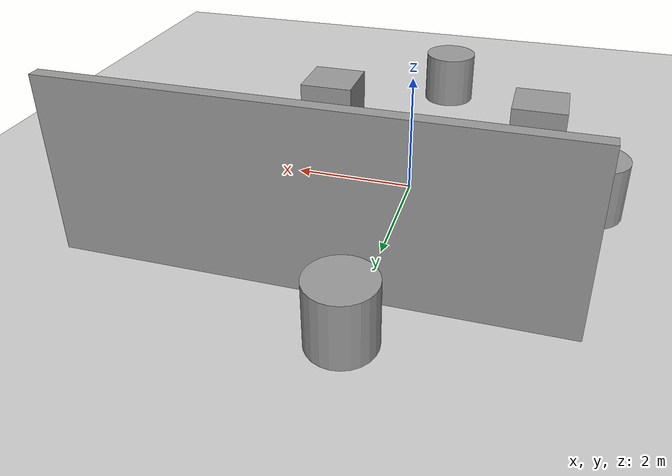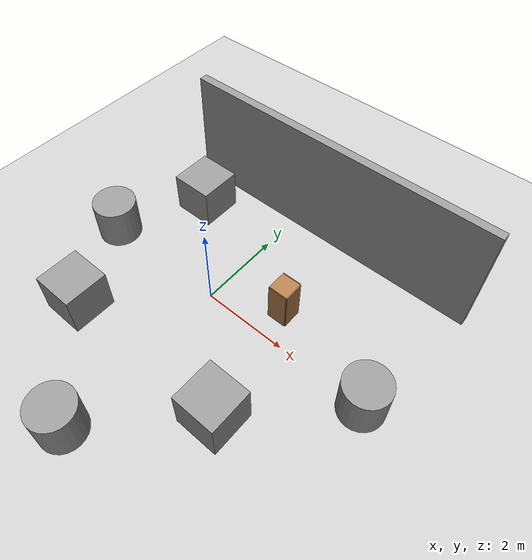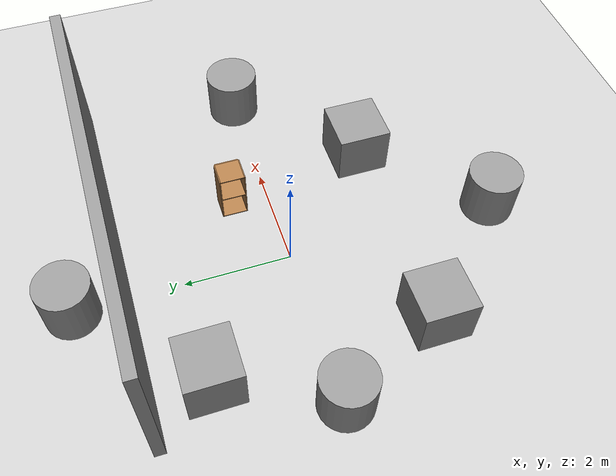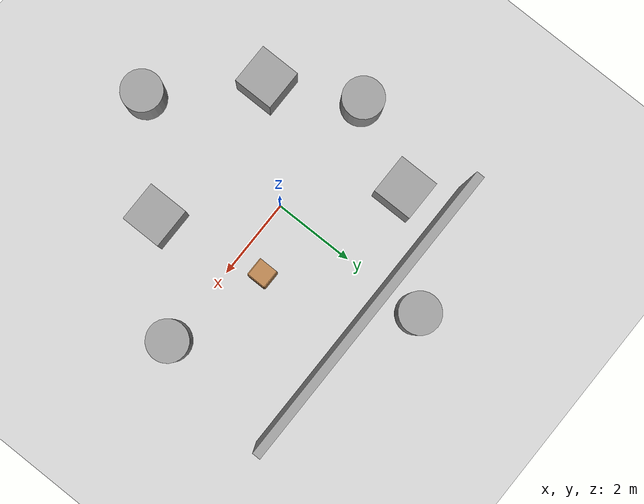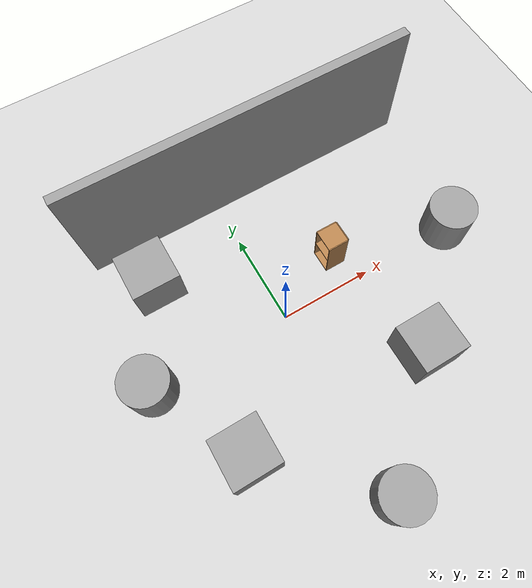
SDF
<sdf version="1.6">
 <world name="default">
  <light name="sun" type="directional">
   <pose>0 0 10 0 -0 0</pose>
   <diffuse>0.8 0.8 0.8 1</diffuse>
   <specular>0.2 0.2 0.2 1</specular>
   <attenuation>
    <range>1000</range>
    <constant>0.9</constant>
    <linear>0.01</linear>
    <quadratic>0.001</quadratic>
   </attenuation>
   <direction>0.5 0.1 -0.9</direction>
  </light>
  <model name="ground_plane">
   <static>1</static>
   <link name="link">
    <collision name="collision">
     <geometry><plane><normal>0 0 1</normal><size>100 100</size></plane></geometry>
     <surface><friction><ode><mu>100</mu><mu2>50</mu2></ode></friction></surface>
    </collision>
    <visual name="visual">
     <cast_shadows>0</cast_shadows>
     <geometry><plane><normal>0 0 1</normal><size>100 100</size></plane></geometry>
     <material>
      <script><uri>file://media/materials/scripts/gazebo.material</uri><name>Gazebo/Grey</name></script>
     </material>
    </visual>
    <velocity_decay><linear>0</linear><angular>0</angular></velocity_decay>
   </link>
  </model>
  <physics name="default_physics" default="0" type="ode">
   <max_step_size>0.01</max_step_size>
   <real_time_factor>1</real_time_factor>
   <real_time_update_rate>100</real_time_update_rate>
  </physics>
  <scene><ambient>0.4 0.4 0.4 1</ambient><background>0.7 0.7 0.7 1</background><shadows>1</shadows></scene>
  <model name="unit_box_1">
   <pose>2 -2 0.5 0 -0 0</pose>
   <link name="link">
    <inertial>
     <mass>1</mass>
     <inertia><ixx>1</ixx><ixy>0</ixy><ixz>0</ixz><iyy>1</iyy><iyz>0</iyz><izz>1</izz></inertia>
    </inertial>
    <collision name="collision"><geometry><box><size>1 1 1</size></box></geometry></collision>
    <visual name="visual">
     <geometry><box><size>1 1 1</size></box></geometry>
     <material>
      <script><uri>file://media/materials/scripts/gazebo.material</uri><name>Gazebo/Grey</name></script>
     </material>
    </visual>
    <velocity_decay><linear>0</linear><angular>0</angular></velocity_decay>
   </link>
   <static>0</static>
  </model>
  <model name="unit_box_2">
   <pose>-2 -2 0.5 0 -0 0</pose>
   <link name="link">
    <inertial>
     <mass>1</mass>
     <inertia><ixx>1</ixx><ixy>0</ixy><ixz>0</ixz><iyy>1</iyy><iyz>0</iyz><izz>1</izz></inertia>
    </inertial>
    <collision name="collision"><geometry><box><size>1 1 1</size></box></geometry></collision>
    <visual name="visual">
     <geometry><box><size>1 1 1</size></box></geometry>
     <material>
      <script><uri>file://media/materials/scripts/gazebo.material</uri><name>Gazebo/Grey</name></script>
     </material>
    </visual>
    <velocity_decay><linear>0</linear><angular>0</angular></velocity_decay>
   </link>
   <static>0</static>
  </model>
  <model name="unit_box_3">
   <pose>-2 2 0.5 0 -0 0</pose>
   <link name="link">
    <inertial>
     <mass>1</mass>
     <inertia><ixx>1</ixx><ixy>0</ixy><ixz>0</ixz><iyy>1</iyy><iyz>0</iyz><izz>1</izz></inertia>
    </inertial>
    <collision name="collision"><geometry><box><size>1 1 1</size></box></geometry></collision>
    <visual name="visual">
     <geometry><box><size>1 1 1</size></box></geometry>
     <material>
      <script><uri>file://media/materials/scripts/gazebo.material</uri><name>Gazebo/Grey</name></script>
     </material>
    </visual>
    <velocity_decay><linear>0</linear><angular>0</angular></velocity_decay>
   </link>
   <static>0</static>
  </model>
  <model name="unit_cylinder_1">
   <pose>4 0 0.49912 0 -0 0</pose>
   <link name="link">
    <inertial>
     <mass>1</mass>
     <inertia><ixx>1</ixx><ixy>0</ixy><ixz>0</ixz><iyy>1</iyy><iyz>0</iyz><izz>1</izz></inertia>
    </inertial>
    <collision name="collision">
     <geometry><cylinder><radius>0.5</radius><length>1</length></cylinder></geometry>
    </collision>
    <visual name="visual">
     <geometry><cylinder><radius>0.5</radius><length>1</length></cylinder></geometry>
     <material>
      <script><uri>file://media/materials/scripts/gazebo.material</uri><name>Gazebo/Grey</name></script>
     </material>
    </visual>
    <velocity_decay><linear>0</linear><angular>0</angular></velocity_decay>
   </link>
   <static>0</static>
  </model>
  <model name="unit_cylinder_2">
   <pose>0 4 0.49912 0 -0 0</pose>
   <link name="link">
    <inertial>
     <mass>1</mass>
     <inertia><ixx>1</ixx><ixy>0</ixy><ixz>0</ixz><iyy>1</iyy><iyz>0</iyz><izz>1</izz></inertia>
    </inertial>
    <collision name="collision">
     <geometry><cylinder><radius>0.5</radius><length>1</length></cylinder></geometry>
    </collision>
    <visual name="visual">
     <geometry><cylinder><radius>0.5</radius><length>1</length></cylinder></geometry>
     <material>
      <script><uri>file://media/materials/scripts/gazebo.material</uri><name>Gazebo/Grey</name></script>
     </material>
    </visual>
    <velocity_decay><linear>0</linear><angular>0</angular></velocity_decay>
   </link>
   <static>0</static>
  </model>
  <model name="unit_cylinder_3">
   <pose>-3 0 0.49912 0 -0 0</pose>
   <link name="link">
    <inertial>
     <mass>1</mass>
     <inertia><ixx>1</ixx><ixy>0</ixy><ixz>0</ixz><iyy>1</iyy><iyz>0</iyz><izz>1</izz></inertia>
    </inertial>
    <collision name="collision">
     <geometry><cylinder><radius>0.5</radius><length>1</length></cylinder></geometry>
    </collision>
    <visual name="visual">
     <geometry><cylinder><radius>0.5</radius><length>1</length></cylinder></geometry>
     <material>
      <script><uri>file://media/materials/scripts/gazebo.material</uri><name>Gazebo/Grey</name></script>
     </material>
    </visual>
    <velocity_decay><linear>0</linear><angular>0</angular></velocity_decay>
   </link>
   <static>0</static>
  </model>
  <model name="unit_cylinder_4">
   <pose>0 -4 0.49912 0 -0 0</pose>
   <link name="link">
    <inertial>
     <mass>1</mass>
     <inertia><ixx>1</ixx><ixy>0</ixy><ixz>0</ixz><iyy>1</iyy><iyz>0</iyz><izz>1</izz></inertia>
    </inertial>
    <collision name="collision">
     <geometry><cylinder><radius>0.5</radius><length>1</length></cylinder></geometry>
    </collision>
    <visual name="visual">
     <geometry><cylinder><radius>0.5</radius><length>1</length></cylinder></geometry>
     <material>
      <script><uri>file://media/materials/scripts/gazebo.material</uri><name>Gazebo/Grey</name></script>
     </material>
    </visual>
    <velocity_decay><linear>0</linear><angular>0</angular></velocity_decay>
   </link>
   <static>0</static>
  </model>
  <gravity>0 0 -9.8</gravity>
  <magnetic_field>6e-06 2.3e-05 -4.2e-05</magnetic_field>
  <atmosphere type="adiabatic"/>
  <spherical_coordinates>
   <surface_model>EARTH_WGS84</surface_model>
   <latitude_deg>0</latitude_deg>
   <longitude_deg>0</longitude_deg>
   <elevation>0</elevation>
   <heading_deg>0</heading_deg>
  </spherical_coordinates>
  <model name="grey_wall">
   <static>1</static>
   <link name="link">
    <pose>0 0 1.4 0 -0 0</pose>
    <collision name="collision"><geometry><box><size>7.5 0.2 2.8</size></box></geometry></collision>
    <visual name="visual">
     <cast_shadows>0</cast_shadows>
     <geometry><box><size>7.5 0.2 2.8</size></box></geometry>
     <material>
      <script>
       <uri>model://grey_wall/materials/scripts</uri>
       <uri>model://grey_wall/materials/textures</uri>
       <name>vrc/grey_wall</name>
      </script>
     </material>
    </visual>
   </link>
   <pose>0.825698 3.06116 0 0 -0 0</pose>
  </model>
  <model name="cabinet">
   <static>1</static>
   <link name="cabinet_bottom_plate">
    <inertial>
     <pose>0 0 -1 0 -0 0</pose>
     <inertia><ixx>2.05</ixx><ixy>0</ixy><ixz>0</ixz><iyy>2.05</iyy><iyz>0</iyz><izz>2.05</izz></inertia>
     <mass>25</mass>
    </inertial>
    <collision name="cabinet_bottom_plate_geom">
     <pose>0 0 0.01 0 -0 0</pose>
     <geometry><box><size>0.45 0.45 0.02</size></box></geometry>
    </collision>
    <visual name="cabinet_bottom_plate_geom_visual">
     <pose>0 0 0.01 0 -0 0</pose>
     <geometry><box><size>0.45 0.45 0.02</size></box></geometry>
     <material>
      <script><uri>file://media/materials/scripts/gazebo.material</uri><name>Gazebo/Wood</name></script>
     </material>
    </visual>
    <collision name="cabinet_bottom_plate_geom_cabinet_back_plate">
     <pose>0.235 0 0.51 0 -0 0</pose>
     <geometry><box><size>0.02 0.45 1.02</size></box></geometry>
    </collision>
    <visual name="cabinet_bottom_plate_geom_cabinet_back_plate_visual">
     <pose>0.235 0 0.51 0 -0 0</pose>
     <geometry><box><size>0.02 0.45 1.02</size></box></geometry>
     <material>
      <script><uri>file://media/materials/scripts/gazebo.material</uri><name>Gazebo/Wood</name></script>
     </material>
    </visual>
    <collision name="cabinet_bottom_plate_geom_cabinet_left_plate">
     <pose>0 0.235 0.51 0 -0 0</pose>
     <geometry><box><size>0.45 0.02 1.02</size></box></geometry>
    </collision>
    <visual name="cabinet_bottom_plate_geom_cabinet_left_plate_visual">
     <pose>0 0.235 0.51 0 -0 0</pose>
     <geometry><box><size>0.45 0.02 1.02</size></box></geometry>
     <material>
      <script><uri>file://media/materials/scripts/gazebo.material</uri><name>Gazebo/Wood</name></script>
     </material>
    </visual>
    <collision name="cabinet_bottom_plate_geom_cabinet_middle_plate">
     <pose>0 0 0.51 0 -0 0</pose>
     <geometry><box><size>0.45 0.45 0.02</size></box></geometry>
    </collision>
    <visual name="cabinet_bottom_plate_geom_cabinet_middle_plate_visual">
     <pose>0 0 0.51 0 -0 0</pose>
     <geometry><box><size>0.45 0.45 0.02</size></box></geometry>
     <material>
      <script><uri>file://media/materials/scripts/gazebo.material</uri><name>Gazebo/Wood</name></script>
     </material>
    </visual>
    <collision name="cabinet_bottom_plate_geom_cabinet_right_plate">
     <pose>0 -0.235 0.51 0 -0 0</pose>
     <geometry><box><size>0.45 0.02 1.02</size></box></geometry>
    </collision>
    <visual name="cabinet_bottom_plate_geom_cabinet_right_plate_visual">
     <pose>0 -0.235 0.51 0 -0 0</pose>
     <geometry><box><size>0.45 0.02 1.02</size></box></geometry>
     <material>
      <script><uri>file://media/materials/scripts/gazebo.material</uri><name>Gazebo/Wood</name></script>
     </material>
    </visual>
    <collision name="cabinet_bottom_plate_geom_cabinet_top_plate">
     <pose>0 0 1.01 0 -0 0</pose>
     <geometry><box><size>0.45 0.45 0.02</size></box></geometry>
    </collision>
    <visual name="cabinet_bottom_plate_geom_cabinet_top_plate_visual">
     <pose>0 0 1.01 0 -0 0</pose>
     <geometry><box><size>0.45 0.45 0.02</size></box></geometry>
     <material>
      <script><uri>file://media/materials/scripts/gazebo.material</uri><name>Gazebo/Wood</name></script>
     </material>
    </visual>
   </link>
   <pose>1.50002 0.700094 0 0 -0 0</pose>
  </model>
 </world>
</sdf>
